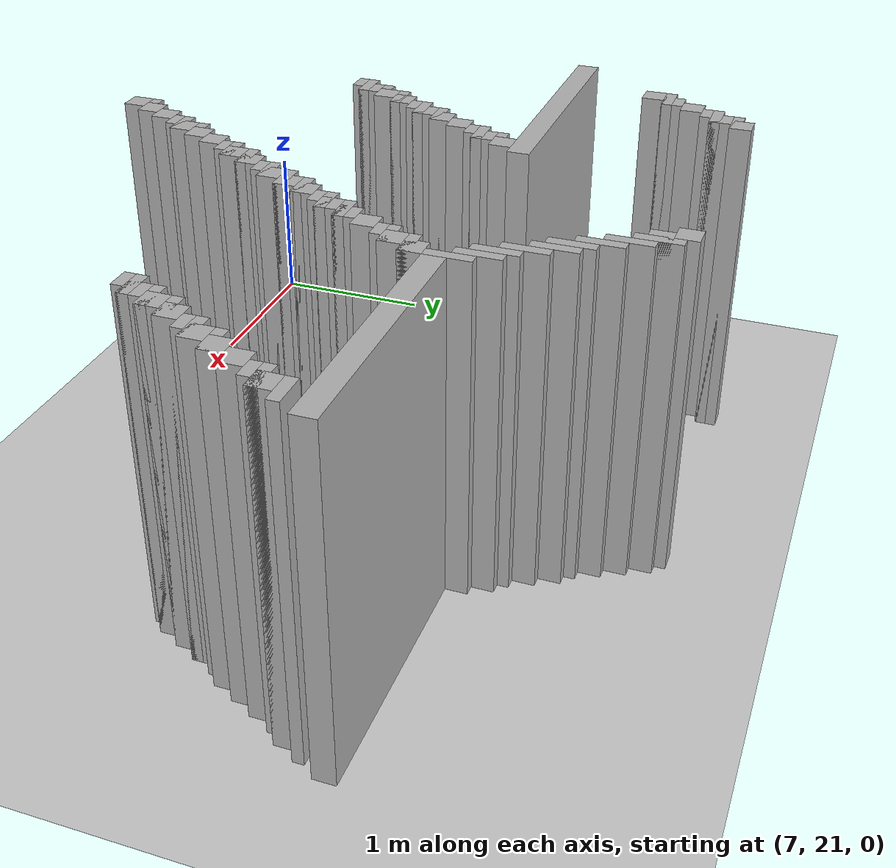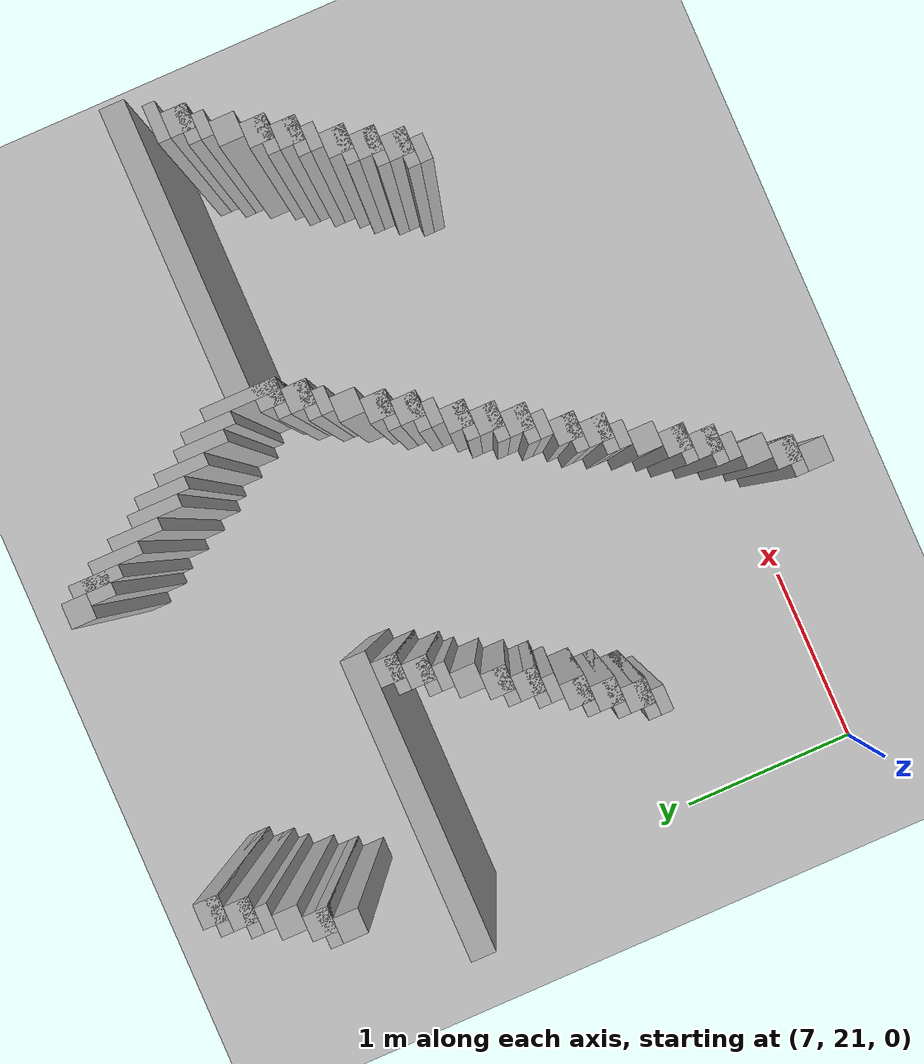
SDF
<sdf version="1.6">
 <world name="slam_world">
  <model name="ground_plane">
   <static>true</static>
   <link name="link">
    <collision name="collision">
     <geometry><plane><normal>0 0 1</normal><size>100 100</size></plane></geometry>
    </collision>
    <visual name="visual">
     <geometry><plane><normal>0 0 1</normal><size>100 100</size></plane></geometry>
     <material>
      <ambient>0.8 0.8 0.8 1</ambient>
      <diffuse>0.8 0.8 0.8 1</diffuse>
      <specular>0.8 0.8 0.8 1</specular>
     </material>
    </visual>
   </link>
  </model>
  <model name="wall_4">
   <static>true</static>
   <pose>7.787234042553191 24.319148936170212 1.0 0 0 0</pose>
   <link name="link">
    <collision name="collision">
     <geometry><box><size>0.1276595744680851 0.1276595744680851 2.0</size></box></geometry>
    </collision>
    <visual name="visual">
     <geometry><box><size>0.1276595744680851 0.1276595744680851 2.0</size></box></geometry>
     <material><ambient>0.5 0.5 0.5 1</ambient><diffuse>0.7 0.7 0.7 1</diffuse></material>
    </visual>
   </link>
  </model>
  <model name="wall_5">
   <static>true</static>
   <pose>9.319148936170212 24.319148936170212 1.0 0 0 0</pose>
   <link name="link">
    <collision name="collision">
     <geometry><box><size>0.1276595744680851 0.1276595744680851 2.0</size></box></geometry>
    </collision>
    <visual name="visual">
     <geometry><box><size>0.1276595744680851 0.1276595744680851 2.0</size></box></geometry>
     <material><ambient>0.5 0.5 0.5 1</ambient><diffuse>0.7 0.7 0.7 1</diffuse></material>
    </visual>
   </link>
  </model>
  <model name="wall_9">
   <static>true</static>
   <pose>7.755319148936169 24.28723404255319 1.0 0 0 0</pose>
   <link name="link">
    <collision name="collision">
     <geometry><box><size>0.19148936170212766 0.06382978723404255 2.0</size></box></geometry>
    </collision>
    <visual name="visual">
     <geometry><box><size>0.19148936170212766 0.06382978723404255 2.0</size></box></geometry>
     <material><ambient>0.5 0.5 0.5 1</ambient><diffuse>0.7 0.7 0.7 1</diffuse></material>
    </visual>
   </link>
  </model>
  <model name="wall_10">
   <static>true</static>
   <pose>9.414893617021276 24.191489361702125 1.0 0 0 0</pose>
   <link name="link">
    <collision name="collision">
     <geometry><box><size>0.06382978723404255 0.2553191489361702 2.0</size></box></geometry>
    </collision>
    <visual name="visual">
     <geometry><box><size>0.06382978723404255 0.2553191489361702 2.0</size></box></geometry>
     <material><ambient>0.5 0.5 0.5 1</ambient><diffuse>0.7 0.7 0.7 1</diffuse></material>
    </visual>
   </link>
  </model>
  <model name="wall_14">
   <static>true</static>
   <pose>7.723404255319148 24.191489361702125 1.0 0 0 0</pose>
   <link name="link">
    <collision name="collision">
     <geometry><box><size>0.1276595744680851 0.1276595744680851 2.0</size></box></geometry>
    </collision>
    <visual name="visual">
     <geometry><box><size>0.1276595744680851 0.1276595744680851 2.0</size></box></geometry>
     <material><ambient>0.5 0.5 0.5 1</ambient><diffuse>0.7 0.7 0.7 1</diffuse></material>
    </visual>
   </link>
  </model>
  <model name="wall_15">
   <static>true</static>
   <pose>9.382978723404255 24.191489361702125 1.0 0 0 0</pose>
   <link name="link">
    <collision name="collision">
     <geometry><box><size>0.1276595744680851 0.1276595744680851 2.0</size></box></geometry>
    </collision>
    <visual name="visual">
     <geometry><box><size>0.1276595744680851 0.1276595744680851 2.0</size></box></geometry>
     <material><ambient>0.5 0.5 0.5 1</ambient><diffuse>0.7 0.7 0.7 1</diffuse></material>
    </visual>
   </link>
  </model>
  <model name="wall_19">
   <static>true</static>
   <pose>7.691489361702127 24.159574468085104 1.0 0 0 0</pose>
   <link name="link">
    <collision name="collision">
     <geometry><box><size>0.19148936170212766 0.06382978723404255 2.0</size></box></geometry>
    </collision>
    <visual name="visual">
     <geometry><box><size>0.19148936170212766 0.06382978723404255 2.0</size></box></geometry>
     <material><ambient>0.5 0.5 0.5 1</ambient><diffuse>0.7 0.7 0.7 1</diffuse></material>
    </visual>
   </link>
  </model>
  <model name="wall_20">
   <static>true</static>
   <pose>9.478723404255318 24.06382978723404 1.0 0 0 0</pose>
   <link name="link">
    <collision name="collision">
     <geometry><box><size>0.06382978723404255 0.2553191489361702 2.0</size></box></geometry>
    </collision>
    <visual name="visual">
     <geometry><box><size>0.06382978723404255 0.2553191489361702 2.0</size></box></geometry>
     <material><ambient>0.5 0.5 0.5 1</ambient><diffuse>0.7 0.7 0.7 1</diffuse></material>
    </visual>
   </link>
  </model>
  <model name="wall_24">
   <static>true</static>
   <pose>7.659574468085106 24.095744680851062 1.0 0 0 0</pose>
   <link name="link">
    <collision name="collision">
     <geometry><box><size>0.1276595744680851 0.06382978723404255 2.0</size></box></geometry>
    </collision>
    <visual name="visual">
     <geometry><box><size>0.1276595744680851 0.06382978723404255 2.0</size></box></geometry>
     <material><ambient>0.5 0.5 0.5 1</ambient><diffuse>0.7 0.7 0.7 1</diffuse></material>
    </visual>
   </link>
  </model>
  <model name="wall_28">
   <static>true</static>
   <pose>7.595744680851063 23.999999999999996 1.0 0 0 0</pose>
   <link name="link">
    <collision name="collision">
     <geometry><box><size>0.1276595744680851 0.1276595744680851 2.0</size></box></geometry>
    </collision>
    <visual name="visual">
     <geometry><box><size>0.1276595744680851 0.1276595744680851 2.0</size></box></geometry>
     <material><ambient>0.5 0.5 0.5 1</ambient><diffuse>0.7 0.7 0.7 1</diffuse></material>
    </visual>
   </link>
  </model>
  <model name="wall_29">
   <static>true</static>
   <pose>9.542553191489361 23.936170212765955 1.0 0 0 0</pose>
   <link name="link">
    <collision name="collision">
     <geometry><box><size>0.06382978723404255 0.2553191489361702 2.0</size></box></geometry>
    </collision>
    <visual name="visual">
     <geometry><box><size>0.06382978723404255 0.2553191489361702 2.0</size></box></geometry>
     <material><ambient>0.5 0.5 0.5 1</ambient><diffuse>0.7 0.7 0.7 1</diffuse></material>
    </visual>
   </link>
  </model>
  <model name="wall_33">
   <static>true</static>
   <pose>7.531914893617021 23.872340425531913 1.0 0 0 0</pose>
   <link name="link">
    <collision name="collision">
     <geometry><box><size>0.1276595744680851 0.1276595744680851 2.0</size></box></geometry>
    </collision>
    <visual name="visual">
     <geometry><box><size>0.1276595744680851 0.1276595744680851 2.0</size></box></geometry>
     <material><ambient>0.5 0.5 0.5 1</ambient><diffuse>0.7 0.7 0.7 1</diffuse></material>
    </visual>
   </link>
  </model>
  <model name="wall_34">
   <static>true</static>
   <pose>9.606382978723403 23.80851063829787 1.0 0 0 0</pose>
   <link name="link">
    <collision name="collision">
     <geometry><box><size>0.06382978723404255 0.2553191489361702 2.0</size></box></geometry>
    </collision>
    <visual name="visual">
     <geometry><box><size>0.06382978723404255 0.2553191489361702 2.0</size></box></geometry>
     <material><ambient>0.5 0.5 0.5 1</ambient><diffuse>0.7 0.7 0.7 1</diffuse></material>
    </visual>
   </link>
  </model>
  <model name="wall_38">
   <static>true</static>
   <pose>7.499999999999999 23.840425531914892 1.0 0 0 0</pose>
   <link name="link">
    <collision name="collision">
     <geometry><box><size>0.19148936170212766 0.06382978723404255 2.0</size></box></geometry>
    </collision>
    <visual name="visual">
     <geometry><box><size>0.19148936170212766 0.06382978723404255 2.0</size></box></geometry>
     <material><ambient>0.5 0.5 0.5 1</ambient><diffuse>0.7 0.7 0.7 1</diffuse></material>
    </visual>
   </link>
  </model>
  <model name="wall_39">
   <static>true</static>
   <pose>9.670212765957446 23.744680851063826 1.0 0 0 0</pose>
   <link name="link">
    <collision name="collision">
     <geometry><box><size>0.06382978723404255 0.2553191489361702 2.0</size></box></geometry>
    </collision>
    <visual name="visual">
     <geometry><box><size>0.06382978723404255 0.2553191489361702 2.0</size></box></geometry>
     <material><ambient>0.5 0.5 0.5 1</ambient><diffuse>0.7 0.7 0.7 1</diffuse></material>
    </visual>
   </link>
  </model>
  <model name="wall_43">
   <static>true</static>
   <pose>7.468085106382978 23.744680851063826 1.0 0 0 0</pose>
   <link name="link">
    <collision name="collision">
     <geometry><box><size>0.1276595744680851 0.1276595744680851 2.0</size></box></geometry>
    </collision>
    <visual name="visual">
     <geometry><box><size>0.1276595744680851 0.1276595744680851 2.0</size></box></geometry>
     <material><ambient>0.5 0.5 0.5 1</ambient><diffuse>0.7 0.7 0.7 1</diffuse></material>
    </visual>
   </link>
  </model>
  <model name="wall_48">
   <static>true</static>
   <pose>9.734042553191488 23.617021276595743 1.0 0 0 0</pose>
   <link name="link">
    <collision name="collision">
     <geometry><box><size>0.06382978723404255 0.2553191489361702 2.0</size></box></geometry>
    </collision>
    <visual name="visual">
     <geometry><box><size>0.06382978723404255 0.2553191489361702 2.0</size></box></geometry>
     <material><ambient>0.5 0.5 0.5 1</ambient><diffuse>0.7 0.7 0.7 1</diffuse></material>
    </visual>
   </link>
  </model>
  <model name="wall_57">
   <static>true</static>
   <pose>9.797872340425531 23.489361702127656 1.0 0 0 0</pose>
   <link name="link">
    <collision name="collision">
     <geometry><box><size>0.06382978723404255 0.2553191489361702 2.0</size></box></geometry>
    </collision>
    <visual name="visual">
     <geometry><box><size>0.06382978723404255 0.2553191489361702 2.0</size></box></geometry>
     <material><ambient>0.5 0.5 0.5 1</ambient><diffuse>0.7 0.7 0.7 1</diffuse></material>
    </visual>
   </link>
  </model>
  <model name="wall_62">
   <static>true</static>
   <pose>9.861702127659573 23.425531914893615 1.0 0 0 0</pose>
   <link name="link">
    <collision name="collision">
     <geometry><box><size>0.06382978723404255 0.2553191489361702 2.0</size></box></geometry>
    </collision>
    <visual name="visual">
     <geometry><box><size>0.06382978723404255 0.2553191489361702 2.0</size></box></geometry>
     <material><ambient>0.5 0.5 0.5 1</ambient><diffuse>0.7 0.7 0.7 1</diffuse></material>
    </visual>
   </link>
  </model>
  <model name="wall_71">
   <static>true</static>
   <pose>9.925531914893616 23.234042553191486 1.0 0 0 0</pose>
   <link name="link">
    <collision name="collision">
     <geometry><box><size>0.06382978723404255 0.3829787234042553 2.0</size></box></geometry>
    </collision>
    <visual name="visual">
     <geometry><box><size>0.06382978723404255 0.3829787234042553 2.0</size></box></geometry>
     <material><ambient>0.5 0.5 0.5 1</ambient><diffuse>0.7 0.7 0.7 1</diffuse></material>
    </visual>
   </link>
  </model>
  <model name="wall_80">
   <static>true</static>
   <pose>7.8510638297872335 23.234042553191486 1.0 0 0 0</pose>
   <link name="link">
    <collision name="collision">
     <geometry><box><size>1.5319148936170213 0.1276595744680851 2.0</size></box></geometry>
    </collision>
    <visual name="visual">
     <geometry><box><size>1.5319148936170213 0.1276595744680851 2.0</size></box></geometry>
     <material><ambient>0.5 0.5 0.5 1</ambient><diffuse>0.7 0.7 0.7 1</diffuse></material>
    </visual>
   </link>
  </model>
  <model name="wall_81">
   <static>true</static>
   <pose>10.691489361702127 23.234042553191486 1.0 0 0 0</pose>
   <link name="link">
    <collision name="collision">
     <geometry><box><size>1.4680851063829785 0.1276595744680851 2.0</size></box></geometry>
    </collision>
    <visual name="visual">
     <geometry><box><size>1.4680851063829785 0.1276595744680851 2.0</size></box></geometry>
     <material><ambient>0.5 0.5 0.5 1</ambient><diffuse>0.7 0.7 0.7 1</diffuse></material>
    </visual>
   </link>
  </model>
  <model name="wall_89">
   <static>true</static>
   <pose>8.48936170212766 23.106382978723403 1.0 0 0 0</pose>
   <link name="link">
    <collision name="collision">
     <geometry><box><size>0.1276595744680851 0.1276595744680851 2.0</size></box></geometry>
    </collision>
    <visual name="visual">
     <geometry><box><size>0.1276595744680851 0.1276595744680851 2.0</size></box></geometry>
     <material><ambient>0.5 0.5 0.5 1</ambient><diffuse>0.7 0.7 0.7 1</diffuse></material>
    </visual>
   </link>
  </model>
  <model name="wall_90">
   <static>true</static>
   <pose>9.893617021276595 23.106382978723403 1.0 0 0 0</pose>
   <link name="link">
    <collision name="collision">
     <geometry><box><size>0.1276595744680851 0.1276595744680851 2.0</size></box></geometry>
    </collision>
    <visual name="visual">
     <geometry><box><size>0.1276595744680851 0.1276595744680851 2.0</size></box></geometry>
     <material><ambient>0.5 0.5 0.5 1</ambient><diffuse>0.7 0.7 0.7 1</diffuse></material>
    </visual>
   </link>
  </model>
  <model name="wall_99">
   <static>true</static>
   <pose>8.457446808510637 23.074468085106382 1.0 0 0 0</pose>
   <link name="link">
    <collision name="collision">
     <geometry><box><size>0.19148936170212766 0.06382978723404255 2.0</size></box></geometry>
    </collision>
    <visual name="visual">
     <geometry><box><size>0.19148936170212766 0.06382978723404255 2.0</size></box></geometry>
     <material><ambient>0.5 0.5 0.5 1</ambient><diffuse>0.7 0.7 0.7 1</diffuse></material>
    </visual>
   </link>
  </model>
  <model name="wall_100">
   <static>true</static>
   <pose>9.861702127659573 23.074468085106382 1.0 0 0 0</pose>
   <link name="link">
    <collision name="collision">
     <geometry><box><size>0.19148936170212766 0.06382978723404255 2.0</size></box></geometry>
    </collision>
    <visual name="visual">
     <geometry><box><size>0.19148936170212766 0.06382978723404255 2.0</size></box></geometry>
     <material><ambient>0.5 0.5 0.5 1</ambient><diffuse>0.7 0.7 0.7 1</diffuse></material>
    </visual>
   </link>
  </model>
  <model name="wall_101">
   <static>true</static>
   <pose>11.26595744680851 23.074468085106382 1.0 0 0 0</pose>
   <link name="link">
    <collision name="collision">
     <geometry><box><size>0.19148936170212766 0.06382978723404255 2.0</size></box></geometry>
    </collision>
    <visual name="visual">
     <geometry><box><size>0.19148936170212766 0.06382978723404255 2.0</size></box></geometry>
     <material><ambient>0.5 0.5 0.5 1</ambient><diffuse>0.7 0.7 0.7 1</diffuse></material>
    </visual>
   </link>
  </model>
  <model name="wall_109">
   <static>true</static>
   <pose>8.425531914893616 22.978723404255316 1.0 0 0 0</pose>
   <link name="link">
    <collision name="collision">
     <geometry><box><size>0.1276595744680851 0.1276595744680851 2.0</size></box></geometry>
    </collision>
    <visual name="visual">
     <geometry><box><size>0.1276595744680851 0.1276595744680851 2.0</size></box></geometry>
     <material><ambient>0.5 0.5 0.5 1</ambient><diffuse>0.7 0.7 0.7 1</diffuse></material>
    </visual>
   </link>
  </model>
  <model name="wall_110">
   <static>true</static>
   <pose>9.829787234042552 22.978723404255316 1.0 0 0 0</pose>
   <link name="link">
    <collision name="collision">
     <geometry><box><size>0.1276595744680851 0.1276595744680851 2.0</size></box></geometry>
    </collision>
    <visual name="visual">
     <geometry><box><size>0.1276595744680851 0.1276595744680851 2.0</size></box></geometry>
     <material><ambient>0.5 0.5 0.5 1</ambient><diffuse>0.7 0.7 0.7 1</diffuse></material>
    </visual>
   </link>
  </model>
  <model name="wall_111">
   <static>true</static>
   <pose>11.234042553191488 22.978723404255316 1.0 0 0 0</pose>
   <link name="link">
    <collision name="collision">
     <geometry><box><size>0.1276595744680851 0.1276595744680851 2.0</size></box></geometry>
    </collision>
    <visual name="visual">
     <geometry><box><size>0.1276595744680851 0.1276595744680851 2.0</size></box></geometry>
     <material><ambient>0.5 0.5 0.5 1</ambient><diffuse>0.7 0.7 0.7 1</diffuse></material>
    </visual>
   </link>
  </model>
  <model name="wall_119">
   <static>true</static>
   <pose>8.393617021276595 22.946808510638295 1.0 0 0 0</pose>
   <link name="link">
    <collision name="collision">
     <geometry><box><size>0.19148936170212766 0.06382978723404255 2.0</size></box></geometry>
    </collision>
    <visual name="visual">
     <geometry><box><size>0.19148936170212766 0.06382978723404255 2.0</size></box></geometry>
     <material><ambient>0.5 0.5 0.5 1</ambient><diffuse>0.7 0.7 0.7 1</diffuse></material>
    </visual>
   </link>
  </model>
  <model name="wall_120">
   <static>true</static>
   <pose>9.797872340425531 22.946808510638295 1.0 0 0 0</pose>
   <link name="link">
    <collision name="collision">
     <geometry><box><size>0.19148936170212766 0.06382978723404255 2.0</size></box></geometry>
    </collision>
    <visual name="visual">
     <geometry><box><size>0.19148936170212766 0.06382978723404255 2.0</size></box></geometry>
     <material><ambient>0.5 0.5 0.5 1</ambient><diffuse>0.7 0.7 0.7 1</diffuse></material>
    </visual>
   </link>
  </model>
  <model name="wall_121">
   <static>true</static>
   <pose>11.202127659574467 22.946808510638295 1.0 0 0 0</pose>
   <link name="link">
    <collision name="collision">
     <geometry><box><size>0.19148936170212766 0.06382978723404255 2.0</size></box></geometry>
    </collision>
    <visual name="visual">
     <geometry><box><size>0.19148936170212766 0.06382978723404255 2.0</size></box></geometry>
     <material><ambient>0.5 0.5 0.5 1</ambient><diffuse>0.7 0.7 0.7 1</diffuse></material>
    </visual>
   </link>
  </model>
  <model name="wall_125">
   <static>true</static>
   <pose>8.361702127659575 22.882978723404253 1.0 0 0 0</pose>
   <link name="link">
    <collision name="collision">
     <geometry><box><size>0.1276595744680851 0.06382978723404255 2.0</size></box></geometry>
    </collision>
    <visual name="visual">
     <geometry><box><size>0.1276595744680851 0.06382978723404255 2.0</size></box></geometry>
     <material><ambient>0.5 0.5 0.5 1</ambient><diffuse>0.7 0.7 0.7 1</diffuse></material>
    </visual>
   </link>
  </model>
  <model name="wall_126">
   <static>true</static>
   <pose>9.76595744680851 22.882978723404253 1.0 0 0 0</pose>
   <link name="link">
    <collision name="collision">
     <geometry><box><size>0.1276595744680851 0.06382978723404255 2.0</size></box></geometry>
    </collision>
    <visual name="visual">
     <geometry><box><size>0.1276595744680851 0.06382978723404255 2.0</size></box></geometry>
     <material><ambient>0.5 0.5 0.5 1</ambient><diffuse>0.7 0.7 0.7 1</diffuse></material>
    </visual>
   </link>
  </model>
  <model name="wall_127">
   <static>true</static>
   <pose>11.170212765957446 22.882978723404253 1.0 0 0 0</pose>
   <link name="link">
    <collision name="collision">
     <geometry><box><size>0.1276595744680851 0.06382978723404255 2.0</size></box></geometry>
    </collision>
    <visual name="visual">
     <geometry><box><size>0.1276595744680851 0.06382978723404255 2.0</size></box></geometry>
     <material><ambient>0.5 0.5 0.5 1</ambient><diffuse>0.7 0.7 0.7 1</diffuse></material>
    </visual>
   </link>
  </model>
  <model name="wall_133">
   <static>true</static>
   <pose>8.297872340425531 22.78723404255319 1.0 0 0 0</pose>
   <link name="link">
    <collision name="collision">
     <geometry><box><size>0.1276595744680851 0.1276595744680851 2.0</size></box></geometry>
    </collision>
    <visual name="visual">
     <geometry><box><size>0.1276595744680851 0.1276595744680851 2.0</size></box></geometry>
     <material><ambient>0.5 0.5 0.5 1</ambient><diffuse>0.7 0.7 0.7 1</diffuse></material>
    </visual>
   </link>
  </model>
  <model name="wall_134">
   <static>true</static>
   <pose>9.702127659574467 22.78723404255319 1.0 0 0 0</pose>
   <link name="link">
    <collision name="collision">
     <geometry><box><size>0.1276595744680851 0.1276595744680851 2.0</size></box></geometry>
    </collision>
    <visual name="visual">
     <geometry><box><size>0.1276595744680851 0.1276595744680851 2.0</size></box></geometry>
     <material><ambient>0.5 0.5 0.5 1</ambient><diffuse>0.7 0.7 0.7 1</diffuse></material>
    </visual>
   </link>
  </model>
  <model name="wall_135">
   <static>true</static>
   <pose>11.106382978723403 22.78723404255319 1.0 0 0 0</pose>
   <link name="link">
    <collision name="collision">
     <geometry><box><size>0.1276595744680851 0.1276595744680851 2.0</size></box></geometry>
    </collision>
    <visual name="visual">
     <geometry><box><size>0.1276595744680851 0.1276595744680851 2.0</size></box></geometry>
     <material><ambient>0.5 0.5 0.5 1</ambient><diffuse>0.7 0.7 0.7 1</diffuse></material>
    </visual>
   </link>
  </model>
  <model name="wall_143">
   <static>true</static>
   <pose>8.23404255319149 22.659574468085104 1.0 0 0 0</pose>
   <link name="link">
    <collision name="collision">
     <geometry><box><size>0.1276595744680851 0.1276595744680851 2.0</size></box></geometry>
    </collision>
    <visual name="visual">
     <geometry><box><size>0.1276595744680851 0.1276595744680851 2.0</size></box></geometry>
     <material><ambient>0.5 0.5 0.5 1</ambient><diffuse>0.7 0.7 0.7 1</diffuse></material>
    </visual>
   </link>
  </model>
  <model name="wall_144">
   <static>true</static>
   <pose>9.638297872340425 22.659574468085104 1.0 0 0 0</pose>
   <link name="link">
    <collision name="collision">
     <geometry><box><size>0.1276595744680851 0.1276595744680851 2.0</size></box></geometry>
    </collision>
    <visual name="visual">
     <geometry><box><size>0.1276595744680851 0.1276595744680851 2.0</size></box></geometry>
     <material><ambient>0.5 0.5 0.5 1</ambient><diffuse>0.7 0.7 0.7 1</diffuse></material>
    </visual>
   </link>
  </model>
  <model name="wall_145">
   <static>true</static>
   <pose>11.042553191489361 22.659574468085104 1.0 0 0 0</pose>
   <link name="link">
    <collision name="collision">
     <geometry><box><size>0.1276595744680851 0.1276595744680851 2.0</size></box></geometry>
    </collision>
    <visual name="visual">
     <geometry><box><size>0.1276595744680851 0.1276595744680851 2.0</size></box></geometry>
     <material><ambient>0.5 0.5 0.5 1</ambient><diffuse>0.7 0.7 0.7 1</diffuse></material>
    </visual>
   </link>
  </model>
  <model name="wall_153">
   <static>true</static>
   <pose>8.202127659574467 22.627659574468083 1.0 0 0 0</pose>
   <link name="link">
    <collision name="collision">
     <geometry><box><size>0.19148936170212766 0.06382978723404255 2.0</size></box></geometry>
    </collision>
    <visual name="visual">
     <geometry><box><size>0.19148936170212766 0.06382978723404255 2.0</size></box></geometry>
     <material><ambient>0.5 0.5 0.5 1</ambient><diffuse>0.7 0.7 0.7 1</diffuse></material>
    </visual>
   </link>
  </model>
  <model name="wall_154">
   <static>true</static>
   <pose>9.606382978723403 22.627659574468083 1.0 0 0 0</pose>
   <link name="link">
    <collision name="collision">
     <geometry><box><size>0.19148936170212766 0.06382978723404255 2.0</size></box></geometry>
    </collision>
    <visual name="visual">
     <geometry><box><size>0.19148936170212766 0.06382978723404255 2.0</size></box></geometry>
     <material><ambient>0.5 0.5 0.5 1</ambient><diffuse>0.7 0.7 0.7 1</diffuse></material>
    </visual>
   </link>
  </model>
  <model name="wall_155">
   <static>true</static>
   <pose>11.01063829787234 22.627659574468083 1.0 0 0 0</pose>
   <link name="link">
    <collision name="collision">
     <geometry><box><size>0.19148936170212766 0.06382978723404255 2.0</size></box></geometry>
    </collision>
    <visual name="visual">
     <geometry><box><size>0.19148936170212766 0.06382978723404255 2.0</size></box></geometry>
     <material><ambient>0.5 0.5 0.5 1</ambient><diffuse>0.7 0.7 0.7 1</diffuse></material>
    </visual>
   </link>
  </model>
  <model name="wall_159">
   <static>true</static>
   <pose>8.170212765957446 22.53191489361702 1.0 0 0 0</pose>
   <link name="link">
    <collision name="collision">
     <geometry><box><size>0.1276595744680851 0.1276595744680851 2.0</size></box></geometry>
    </collision>
    <visual name="visual">
     <geometry><box><size>0.1276595744680851 0.1276595744680851 2.0</size></box></geometry>
     <material><ambient>0.5 0.5 0.5 1</ambient><diffuse>0.7 0.7 0.7 1</diffuse></material>
    </visual>
   </link>
  </model>
  <model name="wall_160">
   <static>true</static>
   <pose>9.574468085106382 22.53191489361702 1.0 0 0 0</pose>
   <link name="link">
    <collision name="collision">
     <geometry><box><size>0.1276595744680851 0.1276595744680851 2.0</size></box></geometry>
    </collision>
    <visual name="visual">
     <geometry><box><size>0.1276595744680851 0.1276595744680851 2.0</size></box></geometry>
     <material><ambient>0.5 0.5 0.5 1</ambient><diffuse>0.7 0.7 0.7 1</diffuse></material>
    </visual>
   </link>
  </model>
  <model name="wall_161">
   <static>true</static>
   <pose>10.978723404255318 22.53191489361702 1.0 0 0 0</pose>
   <link name="link">
    <collision name="collision">
     <geometry><box><size>0.1276595744680851 0.1276595744680851 2.0</size></box></geometry>
    </collision>
    <visual name="visual">
     <geometry><box><size>0.1276595744680851 0.1276595744680851 2.0</size></box></geometry>
     <material><ambient>0.5 0.5 0.5 1</ambient><diffuse>0.7 0.7 0.7 1</diffuse></material>
    </visual>
   </link>
  </model>
  <model name="wall_167">
   <static>true</static>
   <pose>8.138297872340425 22.5 1.0 0 0 0</pose>
   <link name="link">
    <collision name="collision">
     <geometry><box><size>0.19148936170212766 0.06382978723404255 2.0</size></box></geometry>
    </collision>
    <visual name="visual">
     <geometry><box><size>0.19148936170212766 0.06382978723404255 2.0</size></box></geometry>
     <material><ambient>0.5 0.5 0.5 1</ambient><diffuse>0.7 0.7 0.7 1</diffuse></material>
    </visual>
   </link>
  </model>
  <model name="wall_168">
   <static>true</static>
   <pose>9.542553191489361 22.5 1.0 0 0 0</pose>
   <link name="link">
    <collision name="collision">
     <geometry><box><size>0.19148936170212766 0.06382978723404255 2.0</size></box></geometry>
    </collision>
    <visual name="visual">
     <geometry><box><size>0.19148936170212766 0.06382978723404255 2.0</size></box></geometry>
     <material><ambient>0.5 0.5 0.5 1</ambient><diffuse>0.7 0.7 0.7 1</diffuse></material>
    </visual>
   </link>
  </model>
  <model name="wall_169">
   <static>true</static>
   <pose>10.946808510638297 22.5 1.0 0 0 0</pose>
   <link name="link">
    <collision name="collision">
     <geometry><box><size>0.19148936170212766 0.06382978723404255 2.0</size></box></geometry>
    </collision>
    <visual name="visual">
     <geometry><box><size>0.19148936170212766 0.06382978723404255 2.0</size></box></geometry>
     <material><ambient>0.5 0.5 0.5 1</ambient><diffuse>0.7 0.7 0.7 1</diffuse></material>
    </visual>
   </link>
  </model>
  <model name="wall_173">
   <static>true</static>
   <pose>8.106382978723403 22.436170212765955 1.0 0 0 0</pose>
   <link name="link">
    <collision name="collision">
     <geometry><box><size>0.1276595744680851 0.06382978723404255 2.0</size></box></geometry>
    </collision>
    <visual name="visual">
     <geometry><box><size>0.1276595744680851 0.06382978723404255 2.0</size></box></geometry>
     <material><ambient>0.5 0.5 0.5 1</ambient><diffuse>0.7 0.7 0.7 1</diffuse></material>
    </visual>
   </link>
  </model>
  <model name="wall_174">
   <static>true</static>
   <pose>9.51063829787234 22.436170212765955 1.0 0 0 0</pose>
   <link name="link">
    <collision name="collision">
     <geometry><box><size>0.1276595744680851 0.06382978723404255 2.0</size></box></geometry>
    </collision>
    <visual name="visual">
     <geometry><box><size>0.1276595744680851 0.06382978723404255 2.0</size></box></geometry>
     <material><ambient>0.5 0.5 0.5 1</ambient><diffuse>0.7 0.7 0.7 1</diffuse></material>
    </visual>
   </link>
  </model>
  <model name="wall_175">
   <static>true</static>
   <pose>10.914893617021276 22.436170212765955 1.0 0 0 0</pose>
   <link name="link">
    <collision name="collision">
     <geometry><box><size>0.1276595744680851 0.06382978723404255 2.0</size></box></geometry>
    </collision>
    <visual name="visual">
     <geometry><box><size>0.1276595744680851 0.06382978723404255 2.0</size></box></geometry>
     <material><ambient>0.5 0.5 0.5 1</ambient><diffuse>0.7 0.7 0.7 1</diffuse></material>
    </visual>
   </link>
  </model>
  <model name="wall_181">
   <static>true</static>
   <pose>8.042553191489361 22.340425531914892 1.0 0 0 0</pose>
   <link name="link">
    <collision name="collision">
     <geometry><box><size>0.1276595744680851 0.1276595744680851 2.0</size></box></geometry>
    </collision>
    <visual name="visual">
     <geometry><box><size>0.1276595744680851 0.1276595744680851 2.0</size></box></geometry>
     <material><ambient>0.5 0.5 0.5 1</ambient><diffuse>0.7 0.7 0.7 1</diffuse></material>
    </visual>
   </link>
  </model>
  <model name="wall_182">
   <static>true</static>
   <pose>9.446808510638297 22.340425531914892 1.0 0 0 0</pose>
   <link name="link">
    <collision name="collision">
     <geometry><box><size>0.1276595744680851 0.1276595744680851 2.0</size></box></geometry>
    </collision>
    <visual name="visual">
     <geometry><box><size>0.1276595744680851 0.1276595744680851 2.0</size></box></geometry>
     <material><ambient>0.5 0.5 0.5 1</ambient><diffuse>0.7 0.7 0.7 1</diffuse></material>
    </visual>
   </link>
  </model>
  <model name="wall_183">
   <static>true</static>
   <pose>10.851063829787233 22.340425531914892 1.0 0 0 0</pose>
   <link name="link">
    <collision name="collision">
     <geometry><box><size>0.1276595744680851 0.1276595744680851 2.0</size></box></geometry>
    </collision>
    <visual name="visual">
     <geometry><box><size>0.1276595744680851 0.1276595744680851 2.0</size></box></geometry>
     <material><ambient>0.5 0.5 0.5 1</ambient><diffuse>0.7 0.7 0.7 1</diffuse></material>
    </visual>
   </link>
  </model>
  <model name="wall_187">
   <static>true</static>
   <pose>8.01063829787234 22.30851063829787 1.0 0 0 0</pose>
   <link name="link">
    <collision name="collision">
     <geometry><box><size>0.19148936170212766 0.06382978723404255 2.0</size></box></geometry>
    </collision>
    <visual name="visual">
     <geometry><box><size>0.19148936170212766 0.06382978723404255 2.0</size></box></geometry>
     <material><ambient>0.5 0.5 0.5 1</ambient><diffuse>0.7 0.7 0.7 1</diffuse></material>
    </visual>
   </link>
  </model>
  <model name="wall_188">
   <static>true</static>
   <pose>9.414893617021276 22.30851063829787 1.0 0 0 0</pose>
   <link name="link">
    <collision name="collision">
     <geometry><box><size>0.19148936170212766 0.06382978723404255 2.0</size></box></geometry>
    </collision>
    <visual name="visual">
     <geometry><box><size>0.19148936170212766 0.06382978723404255 2.0</size></box></geometry>
     <material><ambient>0.5 0.5 0.5 1</ambient><diffuse>0.7 0.7 0.7 1</diffuse></material>
    </visual>
   </link>
  </model>
  <model name="wall_189">
   <static>true</static>
   <pose>10.819148936170212 22.30851063829787 1.0 0 0 0</pose>
   <link name="link">
    <collision name="collision">
     <geometry><box><size>0.19148936170212766 0.06382978723404255 2.0</size></box></geometry>
    </collision>
    <visual name="visual">
     <geometry><box><size>0.19148936170212766 0.06382978723404255 2.0</size></box></geometry>
     <material><ambient>0.5 0.5 0.5 1</ambient><diffuse>0.7 0.7 0.7 1</diffuse></material>
    </visual>
   </link>
  </model>
  <model name="wall_195">
   <static>true</static>
   <pose>7.978723404255319 22.212765957446805 1.0 0 0 0</pose>
   <link name="link">
    <collision name="collision">
     <geometry><box><size>0.1276595744680851 0.1276595744680851 2.0</size></box></geometry>
    </collision>
    <visual name="visual">
     <geometry><box><size>0.1276595744680851 0.1276595744680851 2.0</size></box></geometry>
     <material><ambient>0.5 0.5 0.5 1</ambient><diffuse>0.7 0.7 0.7 1</diffuse></material>
    </visual>
   </link>
  </model>
  <model name="wall_196">
   <static>true</static>
   <pose>9.382978723404255 22.212765957446805 1.0 0 0 0</pose>
   <link name="link">
    <collision name="collision">
     <geometry><box><size>0.1276595744680851 0.1276595744680851 2.0</size></box></geometry>
    </collision>
    <visual name="visual">
     <geometry><box><size>0.1276595744680851 0.1276595744680851 2.0</size></box></geometry>
     <material><ambient>0.5 0.5 0.5 1</ambient><diffuse>0.7 0.7 0.7 1</diffuse></material>
    </visual>
   </link>
  </model>
  <model name="wall_197">
   <static>true</static>
   <pose>10.787234042553191 22.212765957446805 1.0 0 0 0</pose>
   <link name="link">
    <collision name="collision">
     <geometry><box><size>0.1276595744680851 0.1276595744680851 2.0</size></box></geometry>
    </collision>
    <visual name="visual">
     <geometry><box><size>0.1276595744680851 0.1276595744680851 2.0</size></box></geometry>
     <material><ambient>0.5 0.5 0.5 1</ambient><diffuse>0.7 0.7 0.7 1</diffuse></material>
    </visual>
   </link>
  </model>
  <model name="wall_204">
   <static>true</static>
   <pose>7.946808510638297 22.180851063829785 1.0 0 0 0</pose>
   <link name="link">
    <collision name="collision">
     <geometry><box><size>0.19148936170212766 0.06382978723404255 2.0</size></box></geometry>
    </collision>
    <visual name="visual">
     <geometry><box><size>0.19148936170212766 0.06382978723404255 2.0</size></box></geometry>
     <material><ambient>0.5 0.5 0.5 1</ambient><diffuse>0.7 0.7 0.7 1</diffuse></material>
    </visual>
   </link>
  </model>
  <model name="wall_205">
   <static>true</static>
   <pose>9.351063829787233 22.180851063829785 1.0 0 0 0</pose>
   <link name="link">
    <collision name="collision">
     <geometry><box><size>0.19148936170212766 0.06382978723404255 2.0</size></box></geometry>
    </collision>
    <visual name="visual">
     <geometry><box><size>0.19148936170212766 0.06382978723404255 2.0</size></box></geometry>
     <material><ambient>0.5 0.5 0.5 1</ambient><diffuse>0.7 0.7 0.7 1</diffuse></material>
    </visual>
   </link>
  </model>
  <model name="wall_206">
   <static>true</static>
   <pose>10.75531914893617 22.180851063829785 1.0 0 0 0</pose>
   <link name="link">
    <collision name="collision">
     <geometry><box><size>0.19148936170212766 0.06382978723404255 2.0</size></box></geometry>
    </collision>
    <visual name="visual">
     <geometry><box><size>0.19148936170212766 0.06382978723404255 2.0</size></box></geometry>
     <material><ambient>0.5 0.5 0.5 1</ambient><diffuse>0.7 0.7 0.7 1</diffuse></material>
    </visual>
   </link>
  </model>
  <model name="wall_210">
   <static>true</static>
   <pose>7.914893617021276 22.085106382978722 1.0 0 0 0</pose>
   <link name="link">
    <collision name="collision">
     <geometry><box><size>0.1276595744680851 0.1276595744680851 2.0</size></box></geometry>
    </collision>
    <visual name="visual">
     <geometry><box><size>0.1276595744680851 0.1276595744680851 2.0</size></box></geometry>
     <material><ambient>0.5 0.5 0.5 1</ambient><diffuse>0.7 0.7 0.7 1</diffuse></material>
    </visual>
   </link>
  </model>
  <model name="wall_211">
   <static>true</static>
   <pose>9.319148936170212 22.085106382978722 1.0 0 0 0</pose>
   <link name="link">
    <collision name="collision">
     <geometry><box><size>0.1276595744680851 0.1276595744680851 2.0</size></box></geometry>
    </collision>
    <visual name="visual">
     <geometry><box><size>0.1276595744680851 0.1276595744680851 2.0</size></box></geometry>
     <material><ambient>0.5 0.5 0.5 1</ambient><diffuse>0.7 0.7 0.7 1</diffuse></material>
    </visual>
   </link>
  </model>
  <model name="wall_212">
   <static>true</static>
   <pose>10.723404255319148 22.085106382978722 1.0 0 0 0</pose>
   <link name="link">
    <collision name="collision">
     <geometry><box><size>0.1276595744680851 0.1276595744680851 2.0</size></box></geometry>
    </collision>
    <visual name="visual">
     <geometry><box><size>0.1276595744680851 0.1276595744680851 2.0</size></box></geometry>
     <material><ambient>0.5 0.5 0.5 1</ambient><diffuse>0.7 0.7 0.7 1</diffuse></material>
    </visual>
   </link>
  </model>
  <model name="wall_217">
   <static>true</static>
   <pose>7.882978723404254 22.0531914893617 1.0 0 0 0</pose>
   <link name="link">
    <collision name="collision">
     <geometry><box><size>0.19148936170212766 0.06382978723404255 2.0</size></box></geometry>
    </collision>
    <visual name="visual">
     <geometry><box><size>0.19148936170212766 0.06382978723404255 2.0</size></box></geometry>
     <material><ambient>0.5 0.5 0.5 1</ambient><diffuse>0.7 0.7 0.7 1</diffuse></material>
    </visual>
   </link>
  </model>
  <model name="wall_218">
   <static>true</static>
   <pose>9.287234042553191 22.0531914893617 1.0 0 0 0</pose>
   <link name="link">
    <collision name="collision">
     <geometry><box><size>0.19148936170212766 0.06382978723404255 2.0</size></box></geometry>
    </collision>
    <visual name="visual">
     <geometry><box><size>0.19148936170212766 0.06382978723404255 2.0</size></box></geometry>
     <material><ambient>0.5 0.5 0.5 1</ambient><diffuse>0.7 0.7 0.7 1</diffuse></material>
    </visual>
   </link>
  </model>
  <model name="wall_219">
   <static>true</static>
   <pose>10.691489361702127 22.0531914893617 1.0 0 0 0</pose>
   <link name="link">
    <collision name="collision">
     <geometry><box><size>0.19148936170212766 0.06382978723404255 2.0</size></box></geometry>
    </collision>
    <visual name="visual">
     <geometry><box><size>0.19148936170212766 0.06382978723404255 2.0</size></box></geometry>
     <material><ambient>0.5 0.5 0.5 1</ambient><diffuse>0.7 0.7 0.7 1</diffuse></material>
    </visual>
   </link>
  </model>
  <model name="wall_223">
   <static>true</static>
   <pose>7.8510638297872335 21.989361702127656 1.0 0 0 0</pose>
   <link name="link">
    <collision name="collision">
     <geometry><box><size>0.1276595744680851 0.06382978723404255 2.0</size></box></geometry>
    </collision>
    <visual name="visual">
     <geometry><box><size>0.1276595744680851 0.06382978723404255 2.0</size></box></geometry>
     <material><ambient>0.5 0.5 0.5 1</ambient><diffuse>0.7 0.7 0.7 1</diffuse></material>
    </visual>
   </link>
  </model>
  <model name="wall_224">
   <static>true</static>
   <pose>9.25531914893617 21.989361702127656 1.0 0 0 0</pose>
   <link name="link">
    <collision name="collision">
     <geometry><box><size>0.1276595744680851 0.06382978723404255 2.0</size></box></geometry>
    </collision>
    <visual name="visual">
     <geometry><box><size>0.1276595744680851 0.06382978723404255 2.0</size></box></geometry>
     <material><ambient>0.5 0.5 0.5 1</ambient><diffuse>0.7 0.7 0.7 1</diffuse></material>
    </visual>
   </link>
  </model>
  <model name="wall_225">
   <static>true</static>
   <pose>10.659574468085106 21.989361702127656 1.0 0 0 0</pose>
   <link name="link">
    <collision name="collision">
     <geometry><box><size>0.1276595744680851 0.06382978723404255 2.0</size></box></geometry>
    </collision>
    <visual name="visual">
     <geometry><box><size>0.1276595744680851 0.06382978723404255 2.0</size></box></geometry>
     <material><ambient>0.5 0.5 0.5 1</ambient><diffuse>0.7 0.7 0.7 1</diffuse></material>
    </visual>
   </link>
  </model>
  <model name="wall_230">
   <static>true</static>
   <pose>9.191489361702127 21.893617021276594 1.0 0 0 0</pose>
   <link name="link">
    <collision name="collision">
     <geometry><box><size>0.1276595744680851 0.1276595744680851 2.0</size></box></geometry>
    </collision>
    <visual name="visual">
     <geometry><box><size>0.1276595744680851 0.1276595744680851 2.0</size></box></geometry>
     <material><ambient>0.5 0.5 0.5 1</ambient><diffuse>0.7 0.7 0.7 1</diffuse></material>
    </visual>
   </link>
  </model>
  <model name="wall_237">
   <static>true</static>
   <pose>9.159574468085106 21.861702127659573 1.0 0 0 0</pose>
   <link name="link">
    <collision name="collision">
     <geometry><box><size>0.19148936170212766 0.06382978723404255 2.0</size></box></geometry>
    </collision>
    <visual name="visual">
     <geometry><box><size>0.19148936170212766 0.06382978723404255 2.0</size></box></geometry>
     <material><ambient>0.5 0.5 0.5 1</ambient><diffuse>0.7 0.7 0.7 1</diffuse></material>
    </visual>
   </link>
  </model>
  <model name="wall_243">
   <static>true</static>
   <pose>9.127659574468085 21.76595744680851 1.0 0 0 0</pose>
   <link name="link">
    <collision name="collision">
     <geometry><box><size>0.1276595744680851 0.1276595744680851 2.0</size></box></geometry>
    </collision>
    <visual name="visual">
     <geometry><box><size>0.1276595744680851 0.1276595744680851 2.0</size></box></geometry>
     <material><ambient>0.5 0.5 0.5 1</ambient><diffuse>0.7 0.7 0.7 1</diffuse></material>
    </visual>
   </link>
  </model>
  <model name="wall_251">
   <static>true</static>
   <pose>9.095744680851062 21.734042553191486 1.0 0 0 0</pose>
   <link name="link">
    <collision name="collision">
     <geometry><box><size>0.19148936170212766 0.06382978723404255 2.0</size></box></geometry>
    </collision>
    <visual name="visual">
     <geometry><box><size>0.19148936170212766 0.06382978723404255 2.0</size></box></geometry>
     <material><ambient>0.5 0.5 0.5 1</ambient><diffuse>0.7 0.7 0.7 1</diffuse></material>
    </visual>
   </link>
  </model>
  <model name="wall_257">
   <static>true</static>
   <pose>9.063829787234042 21.670212765957444 1.0 0 0 0</pose>
   <link name="link">
    <collision name="collision">
     <geometry><box><size>0.1276595744680851 0.06382978723404255 2.0</size></box></geometry>
    </collision>
    <visual name="visual">
     <geometry><box><size>0.1276595744680851 0.06382978723404255 2.0</size></box></geometry>
     <material><ambient>0.5 0.5 0.5 1</ambient><diffuse>0.7 0.7 0.7 1</diffuse></material>
    </visual>
   </link>
  </model>
  <model name="wall_265">
   <static>true</static>
   <pose>9.0 21.574468085106382 1.0 0 0 0</pose>
   <link name="link">
    <collision name="collision">
     <geometry><box><size>0.1276595744680851 0.1276595744680851 2.0</size></box></geometry>
    </collision>
    <visual name="visual">
     <geometry><box><size>0.1276595744680851 0.1276595744680851 2.0</size></box></geometry>
     <material><ambient>0.5 0.5 0.5 1</ambient><diffuse>0.7 0.7 0.7 1</diffuse></material>
    </visual>
   </link>
  </model>
  <model name="wall_273">
   <static>true</static>
   <pose>8.936170212765957 21.446808510638295 1.0 0 0 0</pose>
   <link name="link">
    <collision name="collision">
     <geometry><box><size>0.1276595744680851 0.1276595744680851 2.0</size></box></geometry>
    </collision>
    <visual name="visual">
     <geometry><box><size>0.1276595744680851 0.1276595744680851 2.0</size></box></geometry>
     <material><ambient>0.5 0.5 0.5 1</ambient><diffuse>0.7 0.7 0.7 1</diffuse></material>
    </visual>
   </link>
  </model>
  <model name="wall_281">
   <static>true</static>
   <pose>8.904255319148936 21.414893617021274 1.0 0 0 0</pose>
   <link name="link">
    <collision name="collision">
     <geometry><box><size>0.19148936170212766 0.06382978723404255 2.0</size></box></geometry>
    </collision>
    <visual name="visual">
     <geometry><box><size>0.19148936170212766 0.06382978723404255 2.0</size></box></geometry>
     <material><ambient>0.5 0.5 0.5 1</ambient><diffuse>0.7 0.7 0.7 1</diffuse></material>
    </visual>
   </link>
  </model>
  <model name="wall_287">
   <static>true</static>
   <pose>8.872340425531915 21.319148936170212 1.0 0 0 0</pose>
   <link name="link">
    <collision name="collision">
     <geometry><box><size>0.1276595744680851 0.1276595744680851 2.0</size></box></geometry>
    </collision>
    <visual name="visual">
     <geometry><box><size>0.1276595744680851 0.1276595744680851 2.0</size></box></geometry>
     <material><ambient>0.5 0.5 0.5 1</ambient><diffuse>0.7 0.7 0.7 1</diffuse></material>
    </visual>
   </link>
  </model>
  <model name="wall_295">
   <static>true</static>
   <pose>8.840425531914892 21.28723404255319 1.0 0 0 0</pose>
   <link name="link">
    <collision name="collision">
     <geometry><box><size>0.19148936170212766 0.06382978723404255 2.0</size></box></geometry>
    </collision>
    <visual name="visual">
     <geometry><box><size>0.19148936170212766 0.06382978723404255 2.0</size></box></geometry>
     <material><ambient>0.5 0.5 0.5 1</ambient><diffuse>0.7 0.7 0.7 1</diffuse></material>
    </visual>
   </link>
  </model>
  <model name="wall_301">
   <static>true</static>
   <pose>8.808510638297872 21.223404255319146 1.0 0 0 0</pose>
   <link name="link">
    <collision name="collision">
     <geometry><box><size>0.1276595744680851 0.06382978723404255 2.0</size></box></geometry>
    </collision>
    <visual name="visual">
     <geometry><box><size>0.1276595744680851 0.06382978723404255 2.0</size></box></geometry>
     <material><ambient>0.5 0.5 0.5 1</ambient><diffuse>0.7 0.7 0.7 1</diffuse></material>
    </visual>
   </link>
  </model>
  <model name="wall_309">
   <static>true</static>
   <pose>8.74468085106383 21.127659574468083 1.0 0 0 0</pose>
   <link name="link">
    <collision name="collision">
     <geometry><box><size>0.1276595744680851 0.1276595744680851 2.0</size></box></geometry>
    </collision>
    <visual name="visual">
     <geometry><box><size>0.1276595744680851 0.1276595744680851 2.0</size></box></geometry>
     <material><ambient>0.5 0.5 0.5 1</ambient><diffuse>0.7 0.7 0.7 1</diffuse></material>
    </visual>
   </link>
  </model>
  <model name="wall_317">
   <static>true</static>
   <pose>8.680851063829786 21.0 1.0 0 0 0</pose>
   <link name="link">
    <collision name="collision">
     <geometry><box><size>0.1276595744680851 0.1276595744680851 2.0</size></box></geometry>
    </collision>
    <visual name="visual">
     <geometry><box><size>0.1276595744680851 0.1276595744680851 2.0</size></box></geometry>
     <material><ambient>0.5 0.5 0.5 1</ambient><diffuse>0.7 0.7 0.7 1</diffuse></material>
    </visual>
   </link>
  </model>
  <model name="wall_324">
   <static>true</static>
   <pose>8.648936170212766 20.968085106382976 1.0 0 0 0</pose>
   <link name="link">
    <collision name="collision">
     <geometry><box><size>0.19148936170212766 0.06382978723404255 2.0</size></box></geometry>
    </collision>
    <visual name="visual">
     <geometry><box><size>0.19148936170212766 0.06382978723404255 2.0</size></box></geometry>
     <material><ambient>0.5 0.5 0.5 1</ambient><diffuse>0.7 0.7 0.7 1</diffuse></material>
    </visual>
   </link>
  </model>
  <model name="wall_330">
   <static>true</static>
   <pose>8.617021276595745 20.872340425531913 1.0 0 0 0</pose>
   <link name="link">
    <collision name="collision">
     <geometry><box><size>0.1276595744680851 0.1276595744680851 2.0</size></box></geometry>
    </collision>
    <visual name="visual">
     <geometry><box><size>0.1276595744680851 0.1276595744680851 2.0</size></box></geometry>
     <material><ambient>0.5 0.5 0.5 1</ambient><diffuse>0.7 0.7 0.7 1</diffuse></material>
    </visual>
   </link>
  </model>
 </world>
</sdf>
